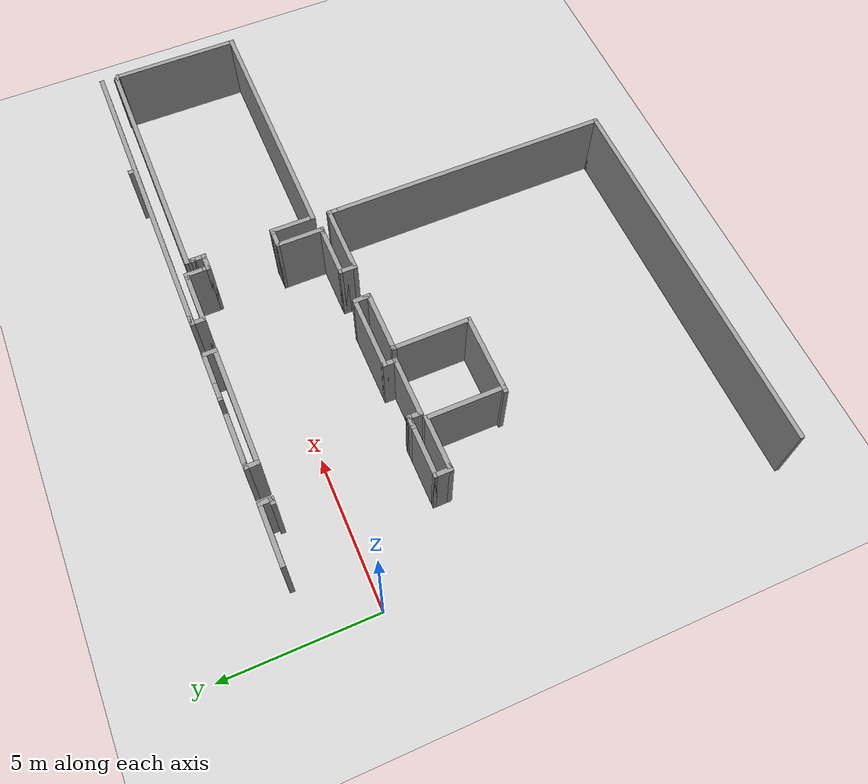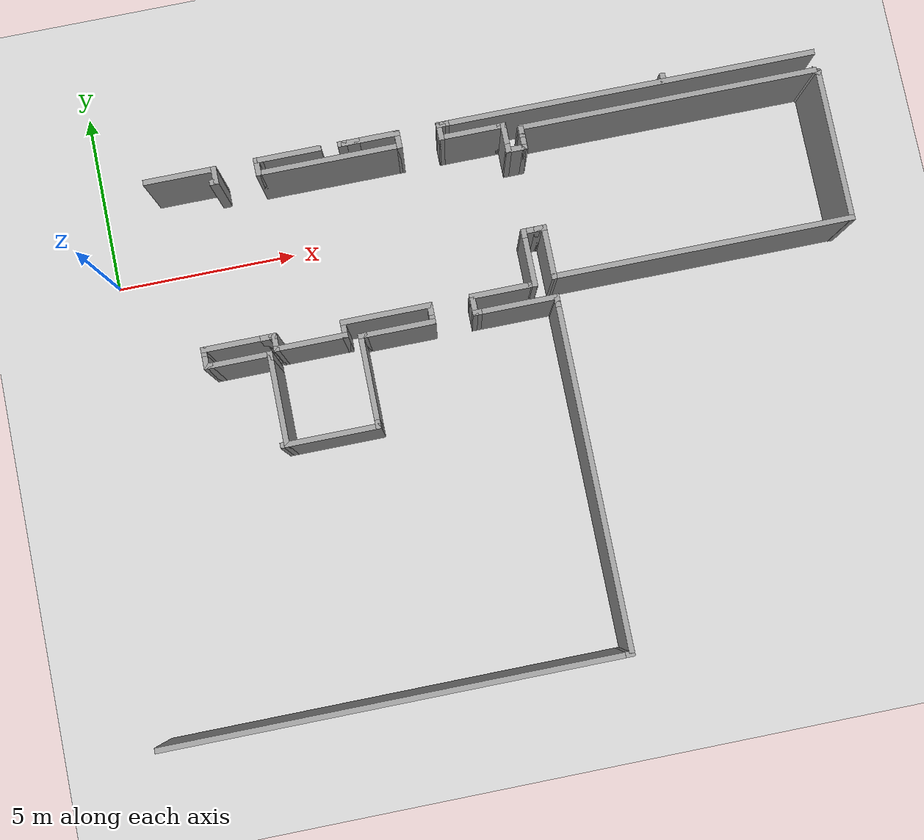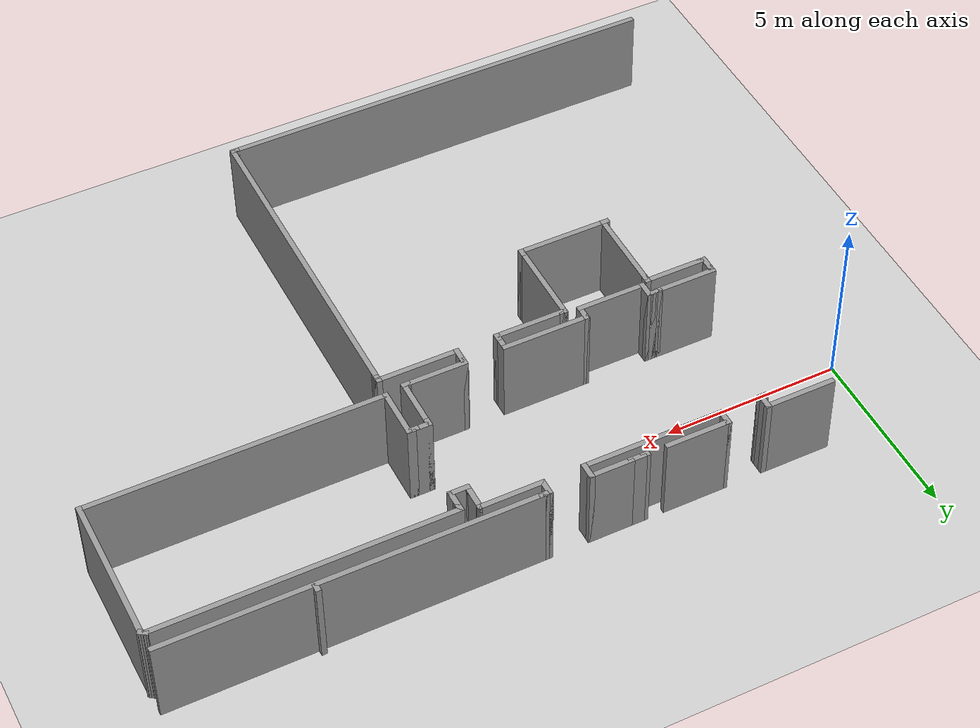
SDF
<sdf version="1.6">
 <world name="default">
  <model name="ground_plane">
   <static>1</static>
   <link name="link">
    <collision name="collision">
     <geometry><plane><normal>0 0 1</normal><size>100 100</size></plane></geometry>
     <surface><friction><ode><mu>100</mu><mu2>50</mu2></ode></friction></surface>
    </collision>
    <visual name="visual">
     <cast_shadows>0</cast_shadows>
     <geometry><plane><normal>0 0 1</normal><size>100 100</size></plane></geometry>
     <material>
      <script><uri>file://media/materials/scripts/gazebo.material</uri><name>Gazebo/Grey</name></script>
     </material>
    </visual>
   </link>
  </model>
  <model name="office_full">
   <pose>-0.417572 -0.704362 0 0 -0 0</pose>
   <link name="Wall_260">
    <collision name="Wall_260_Collision">
     <geometry><box><size>12.5 0.15 2.5</size></box></geometry>
     <pose>0 0 1.25 0 -0 0</pose>
    </collision>
    <visual name="Wall_260_Visual">
     <pose>0 0 1.25 0 -0 0</pose>
     <geometry><box><size>12.5 0.15 2.5</size></box></geometry>
     <material>
      <script><uri>file://media/materials/scripts/gazebo.material</uri><name>Gazebo/Grey</name></script>
      <ambient>1 1 1 1</ambient>
     </material>
    </visual>
    <pose>5.9347 -11.8812 0 0 -0 0</pose>
   </link>
   <link name="Wall_261">
    <collision name="Wall_261_Collision">
     <geometry><box><size>0.25 0.15 2.5</size></box></geometry>
     <pose>0 0 1.25 0 -0 0</pose>
    </collision>
    <visual name="Wall_261_Visual">
     <pose>0 0 1.25 0 -0 0</pose>
     <geometry><box><size>0.25 0.15 2.5</size></box></geometry>
     <material>
      <script><uri>file://media/materials/scripts/gazebo.material</uri><name>Gazebo/Grey</name></script>
      <ambient>1 1 1 1</ambient>
     </material>
    </visual>
    <pose>12.1597 -11.8812 0 0 -0 0</pose>
   </link>
   <link name="Wall_262">
    <collision name="Wall_262_Collision">
     <geometry><box><size>9.5 0.15 2.5</size></box></geometry>
     <pose>0 0 1.25 0 -0 0</pose>
    </collision>
    <visual name="Wall_262_Visual">
     <pose>0 0 1.25 0 -0 0</pose>
     <geometry><box><size>9.5 0.15 2.5</size></box></geometry>
     <material>
      <script><uri>file://media/materials/scripts/gazebo.material</uri><name>Gazebo/Grey</name></script>
      <ambient>1 1 1 1</ambient>
     </material>
    </visual>
    <pose>12.2097 -7.20621 0 0 -0 1.5708</pose>
   </link>
   <link name="Wall_263">
    <collision name="Wall_263_Collision">
     <geometry><box><size>0.25 0.15 2.5</size></box></geometry>
     <pose>0 0 1.25 0 -0 0</pose>
    </collision>
    <visual name="Wall_263_Visual">
     <pose>0 0 1.25 0 -0 0</pose>
     <geometry><box><size>0.25 0.15 2.5</size></box></geometry>
     <material>
      <script><uri>file://media/materials/scripts/gazebo.material</uri><name>Gazebo/Grey</name></script>
      <ambient>1 1 1 1</ambient>
     </material>
    </visual>
    <pose>12.2097 -2.48121 0 0 -0 1.5708</pose>
   </link>
   <link name="Wall_264">
    <collision name="Wall_264_Collision">
     <geometry><box><size>0.25 0.15 2.5</size></box></geometry>
     <pose>0 0 1.25 0 -0 0</pose>
    </collision>
    <visual name="Wall_264_Visual">
     <pose>0 0 1.25 0 -0 0</pose>
     <geometry><box><size>0.25 0.15 2.5</size></box></geometry>
     <material>
      <script><uri>file://media/materials/scripts/gazebo.material</uri><name>Gazebo/Grey</name></script>
      <ambient>1 1 1 1</ambient>
     </material>
    </visual>
    <pose>12.2097 -2.38121 0 0 -0 1.5708</pose>
   </link>
   <link name="Wall_265">
    <collision name="Wall_265_Collision">
     <geometry><box><size>2.25 0.15 2.5</size></box></geometry>
     <pose>0 0 1.25 0 -0 0</pose>
    </collision>
    <visual name="Wall_265_Visual">
     <pose>0 0 1.25 0 -0 0</pose>
     <geometry><box><size>2.25 0.15 2.5</size></box></geometry>
     <material>
      <script><uri>file://media/materials/scripts/gazebo.material</uri><name>Gazebo/Grey</name></script>
      <ambient>1 1 1 1</ambient>
     </material>
    </visual>
    <pose>11.1597 -2.33121 0 0 -0 3.14159</pose>
   </link>
   <link name="Wall_266">
    <collision name="Wall_266_Collision">
     <geometry><box><size>0.25 0.15 2.5</size></box></geometry>
     <pose>0 0 1.25 0 -0 0</pose>
    </collision>
    <visual name="Wall_266_Visual">
     <pose>0 0 1.25 0 -0 0</pose>
     <geometry><box><size>0.25 0.15 2.5</size></box></geometry>
     <material>
      <script><uri>file://media/materials/scripts/gazebo.material</uri><name>Gazebo/Grey</name></script>
      <ambient>1 1 1 1</ambient>
     </material>
    </visual>
    <pose>10.0597 -2.33121 0 0 -0 3.14159</pose>
   </link>
   <link name="Wall_267">
    <collision name="Wall_267_Collision">
     <geometry><box><size>0.5 0.15 2.5</size></box></geometry>
     <pose>0 0 1.25 0 -0 0</pose>
    </collision>
    <visual name="Wall_267_Visual">
     <pose>0 0 1.25 0 -0 0</pose>
     <geometry><box><size>0.5 0.15 2.5</size></box></geometry>
     <material>
      <script><uri>file://media/materials/scripts/gazebo.material</uri><name>Gazebo/Grey</name></script>
      <ambient>1 1 1 1</ambient>
     </material>
    </visual>
    <pose>10.0097 -2.15621 0 0 -0 1.5708</pose>
   </link>
   <link name="Wall_268">
    <collision name="Wall_268_Collision">
     <geometry><box><size>0.25 0.15 2.5</size></box></geometry>
     <pose>0 0 1.25 0 -0 0</pose>
    </collision>
    <visual name="Wall_268_Visual">
     <pose>0 0 1.25 0 -0 0</pose>
     <geometry><box><size>0.25 0.15 2.5</size></box></geometry>
     <material>
      <script><uri>file://media/materials/scripts/gazebo.material</uri><name>Gazebo/Grey</name></script>
      <ambient>1 1 1 1</ambient>
     </material>
    </visual>
    <pose>10.0097 -1.93121 0 0 -0 1.5708</pose>
   </link>
   <link name="Wall_269">
    <collision name="Wall_269_Collision">
     <geometry><box><size>1.75 0.15 2.5</size></box></geometry>
     <pose>0 0 1.25 0 -0 0</pose>
    </collision>
    <visual name="Wall_269_Visual">
     <pose>0 0 1.25 0 -0 0</pose>
     <geometry><box><size>1.75 0.15 2.5</size></box></geometry>
     <material>
      <script><uri>file://media/materials/scripts/gazebo.material</uri><name>Gazebo/Grey</name></script>
      <ambient>1 1 1 1</ambient>
     </material>
    </visual>
    <pose>10.8097 -1.88121 0 0 -0 0</pose>
   </link>
   <link name="Wall_270">
    <collision name="Wall_270_Collision">
     <geometry><box><size>0.25 0.15 2.5</size></box></geometry>
     <pose>0 0 1.25 0 -0 0</pose>
    </collision>
    <visual name="Wall_270_Visual">
     <pose>0 0 1.25 0 -0 0</pose>
     <geometry><box><size>0.25 0.15 2.5</size></box></geometry>
     <material>
      <script><uri>file://media/materials/scripts/gazebo.material</uri><name>Gazebo/Grey</name></script>
      <ambient>1 1 1 1</ambient>
     </material>
    </visual>
    <pose>11.6597 -1.88121 0 0 -0 0</pose>
   </link>
   <link name="Wall_271">
    <collision name="Wall_271_Collision">
     <geometry><box><size>1.5 0.15 2.5</size></box></geometry>
     <pose>0 0 1.25 0 -0 0</pose>
    </collision>
    <visual name="Wall_271_Visual">
     <pose>0 0 1.25 0 -0 0</pose>
     <geometry><box><size>1.5 0.15 2.5</size></box></geometry>
     <material>
      <script><uri>file://media/materials/scripts/gazebo.material</uri><name>Gazebo/Grey</name></script>
      <ambient>1 1 1 1</ambient>
     </material>
    </visual>
    <pose>11.7097 -1.20621 0 0 -0 1.5708</pose>
   </link>
   <link name="Wall_272">
    <collision name="Wall_272_Collision">
     <geometry><box><size>0.25 0.15 2.5</size></box></geometry>
     <pose>0 0 1.25 0 -0 0</pose>
    </collision>
    <visual name="Wall_272_Visual">
     <pose>0 0 1.25 0 -0 0</pose>
     <geometry><box><size>0.25 0.15 2.5</size></box></geometry>
     <material>
      <script><uri>file://media/materials/scripts/gazebo.material</uri><name>Gazebo/Grey</name></script>
      <ambient>1 1 1 1</ambient>
     </material>
    </visual>
    <pose>11.7097 -0.48121 0 0 -0 1.5708</pose>
   </link>
   <link name="Wall_273">
    <collision name="Wall_273_Collision">
     <geometry><box><size>0.5 0.15 2.5</size></box></geometry>
     <pose>0 0 1.25 0 -0 0</pose>
    </collision>
    <visual name="Wall_273_Visual">
     <pose>0 0 1.25 0 -0 0</pose>
     <geometry><box><size>0.5 0.15 2.5</size></box></geometry>
     <material>
      <script><uri>file://media/materials/scripts/gazebo.material</uri><name>Gazebo/Grey</name></script>
      <ambient>1 1 1 1</ambient>
     </material>
    </visual>
    <pose>11.8847 -0.43121 0 0 -0 0</pose>
   </link>
   <link name="Wall_274">
    <collision name="Wall_274_Collision">
     <geometry><box><size>0.25 0.15 2.5</size></box></geometry>
     <pose>0 0 1.25 0 -0 0</pose>
    </collision>
    <visual name="Wall_274_Visual">
     <pose>0 0 1.25 0 -0 0</pose>
     <geometry><box><size>0.25 0.15 2.5</size></box></geometry>
     <material>
      <script><uri>file://media/materials/scripts/gazebo.material</uri><name>Gazebo/Grey</name></script>
      <ambient>1 1 1 1</ambient>
     </material>
    </visual>
    <pose>12.1097 -0.43121 0 0 -0 0</pose>
   </link>
   <link name="Wall_275">
    <collision name="Wall_275_Collision">
     <geometry><box><size>0.25 0.15 2.5</size></box></geometry>
     <pose>0 0 1.25 0 -0 0</pose>
    </collision>
    <visual name="Wall_275_Visual">
     <pose>0 0 1.25 0 -0 0</pose>
     <geometry><box><size>0.25 0.15 2.5</size></box></geometry>
     <material>
      <script><uri>file://media/materials/scripts/gazebo.material</uri><name>Gazebo/Grey</name></script>
      <ambient>1 1 1 1</ambient>
     </material>
    </visual>
    <pose>12.2097 -0.43121 0 0 -0 0</pose>
   </link>
   <link name="Wall_276">
    <collision name="Wall_276_Collision">
     <geometry><box><size>1.5 0.15 2.5</size></box></geometry>
     <pose>0 0 1.25 0 -0 0</pose>
    </collision>
    <visual name="Wall_276_Visual">
     <pose>0 0 1.25 0 -0 0</pose>
     <geometry><box><size>1.5 0.15 2.5</size></box></geometry>
     <material>
      <script><uri>file://media/materials/scripts/gazebo.material</uri><name>Gazebo/Grey</name></script>
      <ambient>1 1 1 1</ambient>
     </material>
    </visual>
    <pose>12.2597 -1.10621 0 0 0 -1.5708</pose>
   </link>
   <link name="Wall_279">
    <collision name="Wall_279_Collision">
     <geometry><box><size>0.25 0.15 2.5</size></box></geometry>
     <pose>0 0 1.25 0 -0 0</pose>
    </collision>
    <visual name="Wall_279_Visual">
     <pose>0 0 1.25 0 -0 0</pose>
     <geometry><box><size>0.25 0.15 2.5</size></box></geometry>
     <material>
      <script><uri>file://media/materials/scripts/gazebo.material</uri><name>Gazebo/Grey</name></script>
      <ambient>1 1 1 1</ambient>
     </material>
    </visual>
    <pose>4.4103 -4.79261 0 0 -0 0</pose>
   </link>
   <link name="Wall_280">
    <collision name="Wall_280_Collision">
     <geometry><box><size>2.5 0.15 2.5</size></box></geometry>
     <pose>0 0 1.25 0 -0 0</pose>
    </collision>
    <visual name="Wall_280_Visual">
     <pose>0 0 1.25 0 -0 0</pose>
     <geometry><box><size>2.5 0.15 2.5</size></box></geometry>
     <material>
      <script><uri>file://media/materials/scripts/gazebo.material</uri><name>Gazebo/Grey</name></script>
      <ambient>1 1 1 1</ambient>
     </material>
    </visual>
    <pose>4.4603 -3.61761 0 0 -0 1.5708</pose>
   </link>
   <link name="Wall_281">
    <collision name="Wall_281_Collision">
     <geometry><box><size>0.25 0.15 2.5</size></box></geometry>
     <pose>0 0 1.25 0 -0 0</pose>
    </collision>
    <visual name="Wall_281_Visual">
     <pose>0 0 1.25 0 -0 0</pose>
     <geometry><box><size>0.25 0.15 2.5</size></box></geometry>
     <material>
      <script><uri>file://media/materials/scripts/gazebo.material</uri><name>Gazebo/Grey</name></script>
      <ambient>1 1 1 1</ambient>
     </material>
    </visual>
    <pose>4.4603 -2.39261 0 0 -0 1.5708</pose>
   </link>
   <link name="Wall_282">
    <collision name="Wall_282_Collision">
     <geometry><box><size>1.75 0.15 2.5</size></box></geometry>
     <pose>0 0 1.25 0 -0 0</pose>
    </collision>
    <visual name="Wall_282_Visual">
     <pose>0 0 1.25 0 -0 0</pose>
     <geometry><box><size>1.75 0.15 2.5</size></box></geometry>
     <material>
      <script><uri>file://media/materials/scripts/gazebo.material</uri><name>Gazebo/Grey</name></script>
      <ambient>1 1 1 1</ambient>
     </material>
    </visual>
    <pose>3.6603 -2.34261 0 0 -0 3.14159</pose>
   </link>
   <link name="Wall_283">
    <collision name="Wall_283_Collision">
     <geometry><box><size>0.25 0.15 2.5</size></box></geometry>
     <pose>0 0 1.25 0 -0 0</pose>
    </collision>
    <visual name="Wall_283_Visual">
     <pose>0 0 1.25 0 -0 0</pose>
     <geometry><box><size>0.25 0.15 2.5</size></box></geometry>
     <material>
      <script><uri>file://media/materials/scripts/gazebo.material</uri><name>Gazebo/Grey</name></script>
      <ambient>1 1 1 1</ambient>
     </material>
    </visual>
    <pose>2.8103 -2.34261 0 0 -0 3.14159</pose>
   </link>
   <link name="Wall_284">
    <collision name="Wall_284_Collision">
     <geometry><box><size>0.5 0.15 2.5</size></box></geometry>
     <pose>0 0 1.25 0 -0 0</pose>
    </collision>
    <visual name="Wall_284_Visual">
     <pose>0 0 1.25 0 -0 0</pose>
     <geometry><box><size>0.5 0.15 2.5</size></box></geometry>
     <material>
      <script><uri>file://media/materials/scripts/gazebo.material</uri><name>Gazebo/Grey</name></script>
      <ambient>1 1 1 1</ambient>
     </material>
    </visual>
    <pose>2.7603 -2.16761 0 0 -0 1.5708</pose>
   </link>
   <link name="Wall_285">
    <collision name="Wall_285_Collision">
     <geometry><box><size>0.25 0.15 2.5</size></box></geometry>
     <pose>0 0 1.25 0 -0 0</pose>
    </collision>
    <visual name="Wall_285_Visual">
     <pose>0 0 1.25 0 -0 0</pose>
     <geometry><box><size>0.25 0.15 2.5</size></box></geometry>
     <material>
      <script><uri>file://media/materials/scripts/gazebo.material</uri><name>Gazebo/Grey</name></script>
      <ambient>1 1 1 1</ambient>
     </material>
    </visual>
    <pose>2.7603 -1.94261 0 0 -0 1.5708</pose>
   </link>
   <link name="Wall_286">
    <collision name="Wall_286_Collision">
     <geometry><box><size>1.75 0.15 2.5</size></box></geometry>
     <pose>0 0 1.25 0 -0 0</pose>
    </collision>
    <visual name="Wall_286_Visual">
     <pose>0 0 1.25 0 -0 0</pose>
     <geometry><box><size>1.75 0.15 2.5</size></box></geometry>
     <material>
      <script><uri>file://media/materials/scripts/gazebo.material</uri><name>Gazebo/Grey</name></script>
      <ambient>1 1 1 1</ambient>
     </material>
    </visual>
    <pose>3.5603 -1.89261 0 0 -0 0</pose>
   </link>
   <link name="Wall_287">
    <collision name="Wall_287_Collision">
     <geometry><box><size>0.25 0.15 2.5</size></box></geometry>
     <pose>0 0 1.25 0 -0 0</pose>
    </collision>
    <visual name="Wall_287_Visual">
     <pose>0 0 1.25 0 -0 0</pose>
     <geometry><box><size>0.25 0.15 2.5</size></box></geometry>
     <material>
      <script><uri>file://media/materials/scripts/gazebo.material</uri><name>Gazebo/Grey</name></script>
      <ambient>1 1 1 1</ambient>
     </material>
    </visual>
    <pose>4.4103 -1.89261 0 0 -0 0</pose>
   </link>
   <link name="Wall_288">
    <collision name="Wall_288_Collision">
     <geometry><box><size>0.25 0.15 2.5</size></box></geometry>
     <pose>0 0 1.25 0 -0 0</pose>
    </collision>
    <visual name="Wall_288_Visual">
     <pose>0 0 1.25 0 -0 0</pose>
     <geometry><box><size>0.25 0.15 2.5</size></box></geometry>
     <material>
      <script><uri>file://media/materials/scripts/gazebo.material</uri><name>Gazebo/Grey</name></script>
      <ambient>1 1 1 1</ambient>
     </material>
    </visual>
    <pose>4.5103 -1.89261 0 0 -0 0</pose>
   </link>
   <link name="Wall_289">
    <collision name="Wall_289_Collision">
     <geometry><box><size>0.25 0.15 2.5</size></box></geometry>
     <pose>0 0 1.25 0 -0 0</pose>
    </collision>
    <visual name="Wall_289_Visual">
     <pose>0 0 1.25 0 -0 0</pose>
     <geometry><box><size>0.25 0.15 2.5</size></box></geometry>
     <material>
      <script><uri>file://media/materials/scripts/gazebo.material</uri><name>Gazebo/Grey</name></script>
      <ambient>1 1 1 1</ambient>
     </material>
    </visual>
    <pose>4.6103 -1.89261 0 0 -0 0</pose>
   </link>
   <link name="Wall_290">
    <collision name="Wall_290_Collision">
     <geometry><box><size>0.5 0.15 2.5</size></box></geometry>
     <pose>0 0 1.25 0 -0 0</pose>
    </collision>
    <visual name="Wall_290_Visual">
     <pose>0 0 1.25 0 -0 0</pose>
     <geometry><box><size>0.5 0.15 2.5</size></box></geometry>
     <material>
      <script><uri>file://media/materials/scripts/gazebo.material</uri><name>Gazebo/Grey</name></script>
      <ambient>1 1 1 1</ambient>
     </material>
    </visual>
    <pose>4.6603 -2.06761 0 0 0 -1.5708</pose>
   </link>
   <link name="Wall_291">
    <collision name="Wall_291_Collision">
     <geometry><box><size>2 0.15 2.5</size></box></geometry>
     <pose>0 0 1.25 0 -0 0</pose>
    </collision>
    <visual name="Wall_291_Visual">
     <pose>0 0 1.25 0 -0 0</pose>
     <geometry><box><size>2 0.15 2.5</size></box></geometry>
     <material>
      <script><uri>file://media/materials/scripts/gazebo.material</uri><name>Gazebo/Grey</name></script>
      <ambient>1 1 1 1</ambient>
     </material>
    </visual>
    <pose>5.5853 -2.24261 0 0 -0 0</pose>
   </link>
   <link name="Wall_292">
    <collision name="Wall_292_Collision">
     <geometry><box><size>0.5 0.15 2.5</size></box></geometry>
     <pose>0 0 1.25 0 -0 0</pose>
    </collision>
    <visual name="Wall_292_Visual">
     <pose>0 0 1.25 0 -0 0</pose>
     <geometry><box><size>0.5 0.15 2.5</size></box></geometry>
     <material>
      <script><uri>file://media/materials/scripts/gazebo.material</uri><name>Gazebo/Grey</name></script>
      <ambient>1 1 1 1</ambient>
     </material>
    </visual>
    <pose>6.5103 -2.06761 0 0 -0 1.5708</pose>
   </link>
   <link name="Wall_293">
    <collision name="Wall_293_Collision">
     <geometry><box><size>2.5 0.15 2.5</size></box></geometry>
     <pose>0 0 1.25 0 -0 0</pose>
    </collision>
    <visual name="Wall_293_Visual">
     <pose>0 0 1.25 0 -0 0</pose>
     <geometry><box><size>2.5 0.15 2.5</size></box></geometry>
     <material>
      <script><uri>file://media/materials/scripts/gazebo.material</uri><name>Gazebo/Grey</name></script>
      <ambient>1 1 1 1</ambient>
     </material>
    </visual>
    <pose>7.6853 -1.89261 0 0 -0 0</pose>
   </link>
   <link name="Wall_294">
    <collision name="Wall_294_Collision">
     <geometry><box><size>0.5 0.15 2.5</size></box></geometry>
     <pose>0 0 1.25 0 -0 0</pose>
    </collision>
    <visual name="Wall_294_Visual">
     <pose>0 0 1.25 0 -0 0</pose>
     <geometry><box><size>0.5 0.15 2.5</size></box></geometry>
     <material>
      <script><uri>file://media/materials/scripts/gazebo.material</uri><name>Gazebo/Grey</name></script>
      <ambient>1 1 1 1</ambient>
     </material>
    </visual>
    <pose>8.8603 -2.06761 0 0 0 -1.5708</pose>
   </link>
   <link name="Wall_295">
    <collision name="Wall_295_Collision">
     <geometry><box><size>0.25 0.15 2.5</size></box></geometry>
     <pose>0 0 1.25 0 -0 0</pose>
    </collision>
    <visual name="Wall_295_Visual">
     <pose>0 0 1.25 0 -0 0</pose>
     <geometry><box><size>0.25 0.15 2.5</size></box></geometry>
     <material>
      <script><uri>file://media/materials/scripts/gazebo.material</uri><name>Gazebo/Grey</name></script>
      <ambient>1 1 1 1</ambient>
     </material>
    </visual>
    <pose>8.8603 -2.29261 0 0 0 -1.5708</pose>
   </link>
   <link name="Wall_296">
    <collision name="Wall_296_Collision">
     <geometry><box><size>2 0.15 2.5</size></box></geometry>
     <pose>0 0 1.25 0 -0 0</pose>
    </collision>
    <visual name="Wall_296_Visual">
     <pose>0 0 1.25 0 -0 0</pose>
     <geometry><box><size>2 0.15 2.5</size></box></geometry>
     <material>
      <script><uri>file://media/materials/scripts/gazebo.material</uri><name>Gazebo/Grey</name></script>
      <ambient>1 1 1 1</ambient>
     </material>
    </visual>
    <pose>7.9353 -2.34261 0 0 -0 3.14159</pose>
   </link>
   <link name="Wall_297">
    <collision name="Wall_297_Collision">
     <geometry><box><size>0.25 0.15 2.5</size></box></geometry>
     <pose>0 0 1.25 0 -0 0</pose>
    </collision>
    <visual name="Wall_297_Visual">
     <pose>0 0 1.25 0 -0 0</pose>
     <geometry><box><size>0.25 0.15 2.5</size></box></geometry>
     <material>
      <script><uri>file://media/materials/scripts/gazebo.material</uri><name>Gazebo/Grey</name></script>
      <ambient>1 1 1 1</ambient>
     </material>
    </visual>
    <pose>6.9603 -2.34261 0 0 -0 3.14159</pose>
   </link>
   <link name="Wall_298">
    <collision name="Wall_298_Collision">
     <geometry><box><size>0.25 0.15 2.5</size></box></geometry>
     <pose>0 0 1.25 0 -0 0</pose>
    </collision>
    <visual name="Wall_298_Visual">
     <pose>0 0 1.25 0 -0 0</pose>
     <geometry><box><size>0.25 0.15 2.5</size></box></geometry>
     <material>
      <script><uri>file://media/materials/scripts/gazebo.material</uri><name>Gazebo/Grey</name></script>
      <ambient>1 1 1 1</ambient>
     </material>
    </visual>
    <pose>6.9603 -2.34261 0 0 -0 0</pose>
   </link>
   <link name="Wall_299">
    <collision name="Wall_299_Collision">
     <geometry><box><size>0.25 0.15 2.5</size></box></geometry>
     <pose>0 0 1.25 0 -0 0</pose>
    </collision>
    <visual name="Wall_299_Visual">
     <pose>0 0 1.25 0 -0 0</pose>
     <geometry><box><size>0.25 0.15 2.5</size></box></geometry>
     <material>
      <script><uri>file://media/materials/scripts/gazebo.material</uri><name>Gazebo/Grey</name></script>
      <ambient>1 1 1 1</ambient>
     </material>
    </visual>
    <pose>6.9603 -2.34261 0 0 -0 3.14159</pose>
   </link>
   <link name="Wall_300">
    <collision name="Wall_300_Collision">
     <geometry><box><size>0.25 0.15 2.5</size></box></geometry>
     <pose>0 0 1.25 0 -0 0</pose>
    </collision>
    <visual name="Wall_300_Visual">
     <pose>0 0 1.25 0 -0 0</pose>
     <geometry><box><size>0.25 0.15 2.5</size></box></geometry>
     <material>
      <script><uri>file://media/materials/scripts/gazebo.material</uri><name>Gazebo/Grey</name></script>
      <ambient>1 1 1 1</ambient>
     </material>
    </visual>
    <pose>6.9603 -2.34261 0 0 -0 0</pose>
   </link>
   <link name="Wall_301">
    <collision name="Wall_301_Collision">
     <geometry><box><size>0.25 0.15 2.5</size></box></geometry>
     <pose>0 0 1.25 0 -0 0</pose>
    </collision>
    <visual name="Wall_301_Visual">
     <pose>0 0 1.25 0 -0 0</pose>
     <geometry><box><size>0.25 0.15 2.5</size></box></geometry>
     <material>
      <script><uri>file://media/materials/scripts/gazebo.material</uri><name>Gazebo/Grey</name></script>
      <ambient>1 1 1 1</ambient>
     </material>
    </visual>
    <pose>6.9603 -2.34261 0 0 -0 3.14159</pose>
   </link>
   <link name="Wall_302">
    <collision name="Wall_302_Collision">
     <geometry><box><size>0.25 0.15 2.5</size></box></geometry>
     <pose>0 0 1.25 0 -0 0</pose>
    </collision>
    <visual name="Wall_302_Visual">
     <pose>0 0 1.25 0 -0 0</pose>
     <geometry><box><size>0.25 0.15 2.5</size></box></geometry>
     <material>
      <script><uri>file://media/materials/scripts/gazebo.material</uri><name>Gazebo/Grey</name></script>
      <ambient>1 1 1 1</ambient>
     </material>
    </visual>
    <pose>6.9603 -2.34261 0 0 -0 0</pose>
   </link>
   <link name="Wall_303">
    <collision name="Wall_303_Collision">
     <geometry><box><size>0.25 0.15 2.5</size></box></geometry>
     <pose>0 0 1.25 0 -0 0</pose>
    </collision>
    <visual name="Wall_303_Visual">
     <pose>0 0 1.25 0 -0 0</pose>
     <geometry><box><size>0.25 0.15 2.5</size></box></geometry>
     <material>
      <script><uri>file://media/materials/scripts/gazebo.material</uri><name>Gazebo/Grey</name></script>
      <ambient>1 1 1 1</ambient>
     </material>
    </visual>
    <pose>6.9603 -2.34261 0 0 -0 3.14159</pose>
   </link>
   <link name="Wall_304">
    <collision name="Wall_304_Collision">
     <geometry><box><size>2.5 0.15 2.5</size></box></geometry>
     <pose>0 0 1.25 0 -0 0</pose>
    </collision>
    <visual name="Wall_304_Visual">
     <pose>0 0 1.25 0 -0 0</pose>
     <geometry><box><size>2.5 0.15 2.5</size></box></geometry>
     <material>
      <script><uri>file://media/materials/scripts/gazebo.material</uri><name>Gazebo/Grey</name></script>
      <ambient>1 1 1 1</ambient>
     </material>
    </visual>
    <pose>6.9103 -3.51761 0 0 0 -1.5708</pose>
   </link>
   <link name="Wall_305">
    <collision name="Wall_305_Collision">
     <geometry><box><size>0.25 0.15 2.5</size></box></geometry>
     <pose>0 0 1.25 0 -0 0</pose>
    </collision>
    <visual name="Wall_305_Visual">
     <pose>0 0 1.25 0 -0 0</pose>
     <geometry><box><size>0.25 0.15 2.5</size></box></geometry>
     <material>
      <script><uri>file://media/materials/scripts/gazebo.material</uri><name>Gazebo/Grey</name></script>
      <ambient>1 1 1 1</ambient>
     </material>
    </visual>
    <pose>6.9103 -4.74261 0 0 0 -1.5708</pose>
   </link>
   <link name="Wall_308">
    <collision name="Wall_308_Collision">
     <geometry><box><size>0.25 0.15 2.5</size></box></geometry>
     <pose>0 0 1.25 0 -0 0</pose>
    </collision>
    <visual name="Wall_308_Visual">
     <pose>0 0 1.25 0 -0 0</pose>
     <geometry><box><size>0.25 0.15 2.5</size></box></geometry>
     <material>
      <script><uri>file://media/materials/scripts/gazebo.material</uri><name>Gazebo/Grey</name></script>
      <ambient>1 1 1 1</ambient>
     </material>
    </visual>
    <pose>6.9103 -4.74261 0 0 0 -1.5708</pose>
   </link>
   <link name="Wall_309">
    <collision name="Wall_309_Collision">
     <geometry><box><size>2.6 0.15 2.5</size></box></geometry>
     <pose>0 0 1.25 0 -0 0</pose>
    </collision>
    <visual name="Wall_309_Visual">
     <pose>0 0 1.25 0 -0 0</pose>
     <geometry><box><size>2.6 0.15 2.5</size></box></geometry>
     <material>
      <script><uri>file://media/materials/scripts/gazebo.material</uri><name>Gazebo/Grey</name></script>
      <ambient>1 1 1 1</ambient>
     </material>
    </visual>
    <pose>5.6853 -4.79261 0 0 -0 3.14159</pose>
   </link>
   <link name="Wall_343">
    <collision name="Wall_343_Collision">
     <geometry><box><size>1.75 0.15 2.5</size></box></geometry>
     <pose>0 0 1.25 0 -0 0</pose>
    </collision>
    <visual name="Wall_343_Visual">
     <pose>0 0 1.25 0 -0 0</pose>
     <geometry><box><size>1.75 0.15 2.5</size></box></geometry>
     <material>
      <script><uri>file://media/materials/scripts/gazebo.material</uri><name>Gazebo/Grey</name></script>
      <ambient>1 1 1 1</ambient>
     </material>
    </visual>
    <pose>5.95798 2.88971 0 0 -0 3.14159</pose>
   </link>
   <link name="Wall_344">
    <collision name="Wall_344_Collision">
     <geometry><box><size>0.25 0.15 2.5</size></box></geometry>
     <pose>0 0 1.25 0 -0 0</pose>
    </collision>
    <visual name="Wall_344_Visual">
     <pose>0 0 1.25 0 -0 0</pose>
     <geometry><box><size>0.25 0.15 2.5</size></box></geometry>
     <material>
      <script><uri>file://media/materials/scripts/gazebo.material</uri><name>Gazebo/Grey</name></script>
      <ambient>1 1 1 1</ambient>
     </material>
    </visual>
    <pose>5.10798 2.88971 0 0 -0 3.14159</pose>
   </link>
   <link name="Wall_345">
    <collision name="Wall_345_Collision">
     <geometry><box><size>0.5 0.15 2.5</size></box></geometry>
     <pose>0 0 1.25 0 -0 0</pose>
    </collision>
    <visual name="Wall_345_Visual">
     <pose>0 0 1.25 0 -0 0</pose>
     <geometry><box><size>0.5 0.15 2.5</size></box></geometry>
     <material>
      <script><uri>file://media/materials/scripts/gazebo.material</uri><name>Gazebo/Grey</name></script>
      <ambient>1 1 1 1</ambient>
     </material>
    </visual>
    <pose>5.05798 2.71471 0 0 0 -1.5708</pose>
   </link>
   <link name="Wall_381">
    <collision name="Wall_381_Collision">
     <geometry><box><size>0.25 0.15 2.5</size></box></geometry>
     <pose>0 0 1.25 0 -0 0</pose>
    </collision>
    <visual name="Wall_381_Visual">
     <pose>0 0 1.25 0 -0 0</pose>
     <geometry><box><size>0.25 0.15 2.5</size></box></geometry>
     <material>
      <script><uri>file://media/materials/scripts/gazebo.material</uri><name>Gazebo/Grey</name></script>
      <ambient>1 1 1 1</ambient>
     </material>
    </visual>
    <pose>3.84568 2.53121 0 0 -0 0</pose>
   </link>
   <link name="Wall_382">
    <collision name="Wall_382_Collision">
     <geometry><box><size>0.5 0.15 2.5</size></box></geometry>
     <pose>0 0 1.25 0 -0 0</pose>
    </collision>
    <visual name="Wall_382_Visual">
     <pose>0 0 1.25 0 -0 0</pose>
     <geometry><box><size>0.5 0.15 2.5</size></box></geometry>
     <material>
      <script><uri>file://media/materials/scripts/gazebo.material</uri><name>Gazebo/Grey</name></script>
      <ambient>1 1 1 1</ambient>
     </material>
    </visual>
    <pose>3.89568 2.70621 0 0 -0 1.5708</pose>
   </link>
   <link name="Wall_385">
    <collision name="Wall_385_Collision">
     <geometry><box><size>2 0.15 2.5</size></box></geometry>
     <pose>0 0 1.25 0 -0 0</pose>
    </collision>
    <visual name="Wall_385_Visual">
     <pose>0 0 1.25 0 -0 0</pose>
     <geometry><box><size>2 0.15 2.5</size></box></geometry>
     <material>
      <script><uri>file://media/materials/scripts/gazebo.material</uri><name>Gazebo/Grey</name></script>
      <ambient>1 1 1 1</ambient>
     </material>
    </visual>
    <pose>2.97068 2.88121 0 0 -0 3.14159</pose>
   </link>
   <link name="Wall_396">
    <collision name="Wall_396_Collision">
     <geometry><box><size>4 0.15 2.5</size></box></geometry>
     <pose>0 0 1.25 0 -0 0</pose>
    </collision>
    <visual name="Wall_396_Visual">
     <pose>0 0 1.25 0 -0 0</pose>
     <geometry><box><size>4 0.15 2.5</size></box></geometry>
     <material>
      <script><uri>file://media/materials/scripts/gazebo.material</uri><name>Gazebo/Grey</name></script>
      <ambient>1 1 1 1</ambient>
     </material>
    </visual>
    <pose>6.98298 2.53971 0 0 -0 0</pose>
   </link>
   <link name="Wall_397">
    <collision name="Wall_397_Collision">
     <geometry><box><size>0.5 0.15 2.5</size></box></geometry>
     <pose>0 0 1.25 0 -0 0</pose>
    </collision>
    <visual name="Wall_397_Visual">
     <pose>0 0 1.25 0 -0 0</pose>
     <geometry><box><size>0.5 0.15 2.5</size></box></geometry>
     <material>
      <script><uri>file://media/materials/scripts/gazebo.material</uri><name>Gazebo/Grey</name></script>
      <ambient>1 1 1 1</ambient>
     </material>
    </visual>
    <pose>8.90798 2.71471 0 0 -0 1.5708</pose>
   </link>
   <link name="Wall_398">
    <collision name="Wall_398_Collision">
     <geometry><box><size>1.25 0.15 2.5</size></box></geometry>
     <pose>0 0 1.25 0 -0 0</pose>
    </collision>
    <visual name="Wall_398_Visual">
     <pose>0 0 1.25 0 -0 0</pose>
     <geometry><box><size>1.25 0.15 2.5</size></box></geometry>
     <material>
      <script><uri>file://media/materials/scripts/gazebo.material</uri><name>Gazebo/Grey</name></script>
      <ambient>1 1 1 1</ambient>
     </material>
    </visual>
    <pose>8.35798 2.88971 0 0 -0 3.14159</pose>
   </link>
   <link name="Wall_399">
    <collision name="Wall_399_Collision">
     <geometry><box><size>0.5 0.15 2.5</size></box></geometry>
     <pose>0 0 1.25 0 -0 0</pose>
    </collision>
    <visual name="Wall_399_Visual">
     <pose>0 0 1.25 0 -0 0</pose>
     <geometry><box><size>0.5 0.15 2.5</size></box></geometry>
     <material>
      <script><uri>file://media/materials/scripts/gazebo.material</uri><name>Gazebo/Grey</name></script>
      <ambient>1 1 1 1</ambient>
     </material>
    </visual>
    <pose>7.63298 2.88971 0 0 -0 3.14159</pose>
   </link>
   <link name="Wall_400">
    <collision name="Wall_400_Collision">
     <geometry><box><size>0.25 0.15 2.5</size></box></geometry>
     <pose>0 0 1.25 0 -0 0</pose>
    </collision>
    <visual name="Wall_400_Visual">
     <pose>0 0 1.25 0 -0 0</pose>
     <geometry><box><size>0.25 0.15 2.5</size></box></geometry>
     <material>
      <script><uri>file://media/materials/scripts/gazebo.material</uri><name>Gazebo/Grey</name></script>
      <ambient>1 1 1 1</ambient>
     </material>
    </visual>
    <pose>7.40798 2.88971 0 0 -0 3.14159</pose>
   </link>
   <link name="Wall_434">
    <collision name="Wall_434_Collision">
     <geometry><box><size>10.25 0.15 2.5</size></box></geometry>
     <pose>0 0 1.25 0 -0 0</pose>
    </collision>
    <visual name="Wall_434_Visual">
     <pose>0 0 1.25 0 -0 0</pose>
     <geometry><box><size>10.25 0.15 2.5</size></box></geometry>
     <material>
      <script><uri>file://media/materials/scripts/gazebo.material</uri><name>Gazebo/Grey</name></script>
      <ambient>1 1 1 1</ambient>
     </material>
    </visual>
    <pose>15.308 2.88971 0 0 -0 3.14159</pose>
   </link>
   <link name="Wall_435">
    <collision name="Wall_435_Collision">
     <geometry><box><size>0.25 0.15 2.5</size></box></geometry>
     <pose>0 0 1.25 0 -0 0</pose>
    </collision>
    <visual name="Wall_435_Visual">
     <pose>0 0 1.25 0 -0 0</pose>
     <geometry><box><size>0.25 0.15 2.5</size></box></geometry>
     <material>
      <script><uri>file://media/materials/scripts/gazebo.material</uri><name>Gazebo/Grey</name></script>
      <ambient>1 1 1 1</ambient>
     </material>
    </visual>
    <pose>10.208 2.88971 0 0 -0 3.14159</pose>
   </link>
   <link name="Wall_436">
    <collision name="Wall_436_Collision">
     <geometry><box><size>0.25 0.15 2.5</size></box></geometry>
     <pose>0 0 1.25 0 -0 0</pose>
    </collision>
    <visual name="Wall_436_Visual">
     <pose>0 0 1.25 0 -0 0</pose>
     <geometry><box><size>0.25 0.15 2.5</size></box></geometry>
     <material>
      <script><uri>file://media/materials/scripts/gazebo.material</uri><name>Gazebo/Grey</name></script>
      <ambient>1 1 1 1</ambient>
     </material>
    </visual>
    <pose>10.108 2.88971 0 0 -0 3.14159</pose>
   </link>
   <link name="Wall_437">
    <collision name="Wall_437_Collision">
     <geometry><box><size>0.5 0.15 2.5</size></box></geometry>
     <pose>0 0 1.25 0 -0 0</pose>
    </collision>
    <visual name="Wall_437_Visual">
     <pose>0 0 1.25 0 -0 0</pose>
     <geometry><box><size>0.5 0.15 2.5</size></box></geometry>
     <material>
      <script><uri>file://media/materials/scripts/gazebo.material</uri><name>Gazebo/Grey</name></script>
      <ambient>1 1 1 1</ambient>
     </material>
    </visual>
    <pose>10.058 2.71471 0 0 0 -1.5708</pose>
   </link>
   <link name="Wall_438">
    <collision name="Wall_438_Collision">
     <geometry><box><size>1.75 0.15 2.5</size></box></geometry>
     <pose>0 0 1.25 0 -0 0</pose>
    </collision>
    <visual name="Wall_438_Visual">
     <pose>0 0 1.25 0 -0 0</pose>
     <geometry><box><size>1.75 0.15 2.5</size></box></geometry>
     <material>
      <script><uri>file://media/materials/scripts/gazebo.material</uri><name>Gazebo/Grey</name></script>
      <ambient>1 1 1 1</ambient>
     </material>
    </visual>
    <pose>10.858 2.53971 0 0 -0 0</pose>
   </link>
   <link name="Wall_439">
    <collision name="Wall_439_Collision">
     <geometry><box><size>0.25 0.15 2.5</size></box></geometry>
     <pose>0 0 1.25 0 -0 0</pose>
    </collision>
    <visual name="Wall_439_Visual">
     <pose>0 0 1.25 0 -0 0</pose>
     <geometry><box><size>0.25 0.15 2.5</size></box></geometry>
     <material>
      <script><uri>file://media/materials/scripts/gazebo.material</uri><name>Gazebo/Grey</name></script>
      <ambient>1 1 1 1</ambient>
     </material>
    </visual>
    <pose>11.708 2.53971 0 0 -0 0</pose>
   </link>
   <link name="Wall_440">
    <collision name="Wall_440_Collision">
     <geometry><box><size>0.75 0.15 2.5</size></box></geometry>
     <pose>0 0 1.25 0 -0 0</pose>
    </collision>
    <visual name="Wall_440_Visual">
     <pose>0 0 1.25 0 -0 0</pose>
     <geometry><box><size>0.75 0.15 2.5</size></box></geometry>
     <material>
      <script><uri>file://media/materials/scripts/gazebo.material</uri><name>Gazebo/Grey</name></script>
      <ambient>1 1 1 1</ambient>
     </material>
    </visual>
    <pose>11.758 2.23971 0 0 0 -1.5708</pose>
   </link>
   <link name="Wall_441">
    <collision name="Wall_441_Collision">
     <geometry><box><size>0.25 0.15 2.5</size></box></geometry>
     <pose>0 0 1.25 0 -0 0</pose>
    </collision>
    <visual name="Wall_441_Visual">
     <pose>0 0 1.25 0 -0 0</pose>
     <geometry><box><size>0.25 0.15 2.5</size></box></geometry>
     <material>
      <script><uri>file://media/materials/scripts/gazebo.material</uri><name>Gazebo/Grey</name></script>
      <ambient>1 1 1 1</ambient>
     </material>
    </visual>
    <pose>11.758 1.88971 0 0 0 -1.5708</pose>
   </link>
   <link name="Wall_442">
    <collision name="Wall_442_Collision">
     <geometry><box><size>0.5 0.15 2.5</size></box></geometry>
     <pose>0 0 1.25 0 -0 0</pose>
    </collision>
    <visual name="Wall_442_Visual">
     <pose>0 0 1.25 0 -0 0</pose>
     <geometry><box><size>0.5 0.15 2.5</size></box></geometry>
     <material>
      <script><uri>file://media/materials/scripts/gazebo.material</uri><name>Gazebo/Grey</name></script>
      <ambient>1 1 1 1</ambient>
     </material>
    </visual>
    <pose>11.933 1.83971 0 0 -0 0</pose>
   </link>
   <link name="Wall_443">
    <collision name="Wall_443_Collision">
     <geometry><box><size>0.25 0.15 2.5</size></box></geometry>
     <pose>0 0 1.25 0 -0 0</pose>
    </collision>
    <visual name="Wall_443_Visual">
     <pose>0 0 1.25 0 -0 0</pose>
     <geometry><box><size>0.25 0.15 2.5</size></box></geometry>
     <material>
      <script><uri>file://media/materials/scripts/gazebo.material</uri><name>Gazebo/Grey</name></script>
      <ambient>1 1 1 1</ambient>
     </material>
    </visual>
    <pose>12.158 1.83971 0 0 -0 0</pose>
   </link>
   <link name="Wall_444">
    <collision name="Wall_444_Collision">
     <geometry><box><size>0.5 0.15 2.5</size></box></geometry>
     <pose>0 0 1.25 0 -0 0</pose>
    </collision>
    <visual name="Wall_444_Visual">
     <pose>0 0 1.25 0 -0 0</pose>
     <geometry><box><size>0.5 0.15 2.5</size></box></geometry>
     <material>
      <script><uri>file://media/materials/scripts/gazebo.material</uri><name>Gazebo/Grey</name></script>
      <ambient>1 1 1 1</ambient>
     </material>
    </visual>
    <pose>12.208 2.01471 0 0 -0 1.5708</pose>
   </link>
   <link name="Wall_445">
    <collision name="Wall_445_Collision">
     <geometry><box><size>0.25 0.15 2.5</size></box></geometry>
     <pose>0 0 1.25 0 -0 0</pose>
    </collision>
    <visual name="Wall_445_Visual">
     <pose>0 0 1.25 0 -0 0</pose>
     <geometry><box><size>0.25 0.15 2.5</size></box></geometry>
     <material>
      <script><uri>file://media/materials/scripts/gazebo.material</uri><name>Gazebo/Grey</name></script>
      <ambient>1 1 1 1</ambient>
     </material>
    </visual>
    <pose>12.208 2.23971 0 0 -0 1.5708</pose>
   </link>
   <link name="Wall_446">
    <collision name="Wall_446_Collision">
     <geometry><box><size>0.25 0.15 2.5</size></box></geometry>
     <pose>0 0 1.25 0 -0 0</pose>
    </collision>
    <visual name="Wall_446_Visual">
     <pose>0 0 1.25 0 -0 0</pose>
     <geometry><box><size>0.25 0.15 2.5</size></box></geometry>
     <material>
      <script><uri>file://media/materials/scripts/gazebo.material</uri><name>Gazebo/Grey</name></script>
      <ambient>1 1 1 1</ambient>
     </material>
    </visual>
    <pose>12.208 2.33971 0 0 -0 1.5708</pose>
   </link>
   <link name="Wall_447">
    <collision name="Wall_447_Collision">
     <geometry><box><size>8.25 0.15 2.5</size></box></geometry>
     <pose>0 0 1.25 0 -0 0</pose>
    </collision>
    <visual name="Wall_447_Visual">
     <pose>0 0 1.25 0 -0 0</pose>
     <geometry><box><size>8.25 0.15 2.5</size></box></geometry>
     <material>
      <script><uri>file://media/materials/scripts/gazebo.material</uri><name>Gazebo/Grey</name></script>
      <ambient>1 1 1 1</ambient>
     </material>
    </visual>
    <pose>16.258 2.38971 0 0 -0 0</pose>
   </link>
   <link name="Wall_448">
    <collision name="Wall_448_Collision">
     <geometry><box><size>0.274237 0.15 2.5</size></box></geometry>
     <pose>0 0 1.25 0 -0 0</pose>
    </collision>
    <visual name="Wall_448_Visual">
     <pose>0 0 1.25 0 -0 0</pose>
     <geometry><box><size>0.274237 0.15 2.5</size></box></geometry>
     <material>
      <script><uri>file://media/materials/scripts/gazebo.material</uri><name>Gazebo/Grey</name></script>
      <ambient>1 1 1 1</ambient>
     </material>
    </visual>
    <pose>20.3596 2.35519 0 0 0 -0.589214</pose>
   </link>
   <link name="Wall_449">
    <collision name="Wall_449_Collision">
     <geometry><box><size>4.25988 0.15 2.5</size></box></geometry>
     <pose>0 0 1.25 0 -0 0</pose>
    </collision>
    <visual name="Wall_449_Visual">
     <pose>0 0 1.25 0 -0 0</pose>
     <geometry><box><size>4.25988 0.15 2.5</size></box></geometry>
     <material>
      <script><uri>file://media/materials/scripts/gazebo.material</uri><name>Gazebo/Grey</name></script>
      <ambient>1 1 1 1</ambient>
     </material>
    </visual>
    <pose>20.403 0.265735 0 0 0 -1.5732</pose>
   </link>
   <link name="Wall_452">
    <collision name="Wall_452_Collision">
     <geometry><box><size>8.28834 0.15 2.5</size></box></geometry>
     <pose>0 0 1.25 0 -0 0</pose>
    </collision>
    <visual name="Wall_452_Visual">
     <pose>0 0 1.25 0 -0 0</pose>
     <geometry><box><size>8.28834 0.15 2.5</size></box></geometry>
     <material>
      <script><uri>file://media/materials/scripts/gazebo.material</uri><name>Gazebo/Grey</name></script>
      <ambient>1 1 1 1</ambient>
     </material>
    </visual>
    <pose>16.3289 -1.78047 0 0 -0 0.000182</pose>
   </link>
   <link name="Wall_468">
    <collision name="Wall_468_Collision">
     <geometry><box><size>0.25 0.15 2.5</size></box></geometry>
     <pose>0 0 1.25 0 -0 0</pose>
    </collision>
    <visual name="Wall_468_Visual">
     <pose>0 0 1.25 0 -0 0</pose>
     <geometry><box><size>0.25 0.15 2.5</size></box></geometry>
     <material>
      <script><uri>file://media/materials/scripts/gazebo.material</uri><name>Gazebo/Grey</name></script>
      <ambient>1 1 1 1</ambient>
     </material>
    </visual>
    <pose>16.258 2.98971 0 0 0 -1.5708</pose>
   </link>
   <static>1</static>
  </model>
 </world>
</sdf>
